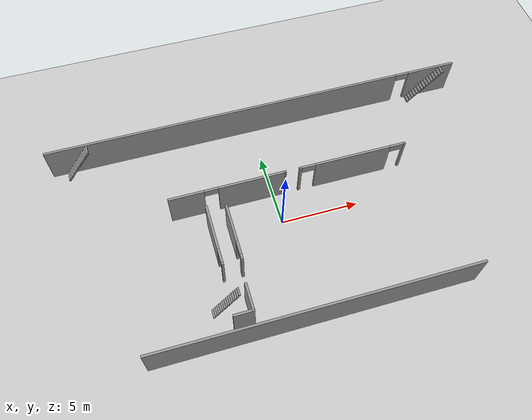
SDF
<sdf version="1.6">
 <world name="default">
  <model name="ground_plane">
   <static>1</static>
   <link name="link">
    <collision name="collision">
     <geometry><plane><normal>0 0 1</normal><size>100 100</size></plane></geometry>
     <surface><friction><ode><mu>100</mu><mu2>50</mu2></ode></friction></surface>
    </collision>
    <visual name="visual">
     <cast_shadows>0</cast_shadows>
     <geometry><plane><normal>0 0 1</normal><size>100 100</size></plane></geometry>
     <material>
      <script><uri>file://media/materials/scripts/gazebo.material</uri><name>Gazebo/Grey</name></script>
     </material>
    </visual>
   </link>
  </model>
  <model name="deh_f1">
   <pose>0.520969 0.357811 0 0 -0 0</pose>
   <link name="Stairs_0">
    <visual name="Stairs_0_Visual_0">
     <pose>-6.2314 -5.10974 0.083333 0 -0 1.5708</pose>
     <geometry><box><size>0.49 0.113139 0.166667</size></box></geometry>
     <material>
      <script><uri>file://media/materials/scripts/gazebo.material</uri><name>Gazebo/Grey</name></script>
      <ambient>1 1 1 1</ambient>
     </material>
    </visual>
    <collision name="Stairs_0_Collision_0">
     <geometry><box><size>0.49 0.113139 0.166667</size></box></geometry>
     <pose>-6.2314 -5.10974 0.083333 0 -0 1.5708</pose>
    </collision>
    <visual name="Stairs_0_Visual_1">
     <pose>-6.11826 -5.10974 0.25 0 -0 1.5708</pose>
     <geometry><box><size>0.49 0.113139 0.166667</size></box></geometry>
     <material>
      <script><uri>file://media/materials/scripts/gazebo.material</uri><name>Gazebo/Grey</name></script>
      <ambient>1 1 1 1</ambient>
     </material>
    </visual>
    <collision name="Stairs_0_Collision_1">
     <geometry><box><size>0.49 0.113139 0.166667</size></box></geometry>
     <pose>-6.11826 -5.10974 0.25 0 -0 1.5708</pose>
    </collision>
    <visual name="Stairs_0_Visual_2">
     <pose>-6.00512 -5.10974 0.416667 0 -0 1.5708</pose>
     <geometry><box><size>0.49 0.113139 0.166667</size></box></geometry>
     <material>
      <script><uri>file://media/materials/scripts/gazebo.material</uri><name>Gazebo/Grey</name></script>
      <ambient>1 1 1 1</ambient>
     </material>
    </visual>
    <collision name="Stairs_0_Collision_2">
     <geometry><box><size>0.49 0.113139 0.166667</size></box></geometry>
     <pose>-6.00512 -5.10974 0.416667 0 -0 1.5708</pose>
    </collision>
    <visual name="Stairs_0_Visual_3">
     <pose>-5.89198 -5.10974 0.583333 0 -0 1.5708</pose>
     <geometry><box><size>0.49 0.113139 0.166667</size></box></geometry>
     <material>
      <script><uri>file://media/materials/scripts/gazebo.material</uri><name>Gazebo/Grey</name></script>
      <ambient>1 1 1 1</ambient>
     </material>
    </visual>
    <collision name="Stairs_0_Collision_3">
     <geometry><box><size>0.49 0.113139 0.166667</size></box></geometry>
     <pose>-5.89198 -5.10974 0.583333 0 -0 1.5708</pose>
    </collision>
    <visual name="Stairs_0_Visual_4">
     <pose>-5.77884 -5.10974 0.75 0 -0 1.5708</pose>
     <geometry><box><size>0.49 0.113139 0.166667</size></box></geometry>
     <material>
      <script><uri>file://media/materials/scripts/gazebo.material</uri><name>Gazebo/Grey</name></script>
      <ambient>1 1 1 1</ambient>
     </material>
    </visual>
    <collision name="Stairs_0_Collision_4">
     <geometry><box><size>0.49 0.113139 0.166667</size></box></geometry>
     <pose>-5.77884 -5.10974 0.75 0 -0 1.5708</pose>
    </collision>
    <visual name="Stairs_0_Visual_5">
     <pose>-5.66571 -5.10974 0.916667 0 -0 1.5708</pose>
     <geometry><box><size>0.49 0.113139 0.166667</size></box></geometry>
     <material>
      <script><uri>file://media/materials/scripts/gazebo.material</uri><name>Gazebo/Grey</name></script>
      <ambient>1 1 1 1</ambient>
     </material>
    </visual>
    <collision name="Stairs_0_Collision_5">
     <geometry><box><size>0.49 0.113139 0.166667</size></box></geometry>
     <pose>-5.66571 -5.10974 0.916667 0 -0 1.5708</pose>
    </collision>
    <visual name="Stairs_0_Visual_6">
     <pose>-5.55257 -5.10974 1.08333 0 -0 1.5708</pose>
     <geometry><box><size>0.49 0.113139 0.166667</size></box></geometry>
     <material>
      <script><uri>file://media/materials/scripts/gazebo.material</uri><name>Gazebo/Grey</name></script>
      <ambient>1 1 1 1</ambient>
     </material>
    </visual>
    <collision name="Stairs_0_Collision_6">
     <geometry><box><size>0.49 0.113139 0.166667</size></box></geometry>
     <pose>-5.55257 -5.10974 1.08333 0 -0 1.5708</pose>
    </collision>
    <visual name="Stairs_0_Visual_7">
     <pose>-5.43943 -5.10974 1.25 0 -0 1.5708</pose>
     <geometry><box><size>0.49 0.113139 0.166667</size></box></geometry>
     <material>
      <script><uri>file://media/materials/scripts/gazebo.material</uri><name>Gazebo/Grey</name></script>
      <ambient>1 1 1 1</ambient>
     </material>
    </visual>
    <collision name="Stairs_0_Collision_7">
     <geometry><box><size>0.49 0.113139 0.166667</size></box></geometry>
     <pose>-5.43943 -5.10974 1.25 0 -0 1.5708</pose>
    </collision>
    <visual name="Stairs_0_Visual_8">
     <pose>-5.32629 -5.10974 1.41667 0 -0 1.5708</pose>
     <geometry><box><size>0.49 0.113139 0.166667</size></box></geometry>
     <material>
      <script><uri>file://media/materials/scripts/gazebo.material</uri><name>Gazebo/Grey</name></script>
      <ambient>1 1 1 1</ambient>
     </material>
    </visual>
    <collision name="Stairs_0_Collision_8">
     <geometry><box><size>0.49 0.113139 0.166667</size></box></geometry>
     <pose>-5.32629 -5.10974 1.41667 0 -0 1.5708</pose>
    </collision>
    <visual name="Stairs_0_Visual_9">
     <pose>-5.21315 -5.10974 1.58333 0 -0 1.5708</pose>
     <geometry><box><size>0.49 0.113139 0.166667</size></box></geometry>
     <material>
      <script><uri>file://media/materials/scripts/gazebo.material</uri><name>Gazebo/Grey</name></script>
      <ambient>1 1 1 1</ambient>
     </material>
    </visual>
    <collision name="Stairs_0_Collision_9">
     <geometry><box><size>0.49 0.113139 0.166667</size></box></geometry>
     <pose>-5.21315 -5.10974 1.58333 0 -0 1.5708</pose>
    </collision>
    <visual name="Stairs_0_Visual_10">
     <pose>-5.10001 -5.10974 1.75 0 -0 1.5708</pose>
     <geometry><box><size>0.49 0.113139 0.166667</size></box></geometry>
     <material>
      <script><uri>file://media/materials/scripts/gazebo.material</uri><name>Gazebo/Grey</name></script>
      <ambient>1 1 1 1</ambient>
     </material>
    </visual>
    <collision name="Stairs_0_Collision_10">
     <geometry><box><size>0.49 0.113139 0.166667</size></box></geometry>
     <pose>-5.10001 -5.10974 1.75 0 -0 1.5708</pose>
    </collision>
    <visual name="Stairs_0_Visual_11">
     <pose>-4.98687 -5.10974 1.91667 0 -0 1.5708</pose>
     <geometry><box><size>0.49 0.113139 0.166667</size></box></geometry>
     <material>
      <script><uri>file://media/materials/scripts/gazebo.material</uri><name>Gazebo/Grey</name></script>
      <ambient>1 1 1 1</ambient>
     </material>
    </visual>
    <collision name="Stairs_0_Collision_11">
     <geometry><box><size>0.49 0.113139 0.166667</size></box></geometry>
     <pose>-4.98687 -5.10974 1.91667 0 -0 1.5708</pose>
    </collision>
    <visual name="Stairs_0_Visual_12">
     <pose>-4.87373 -5.10974 2.08333 0 -0 1.5708</pose>
     <geometry><box><size>0.49 0.113139 0.166667</size></box></geometry>
     <material>
      <script><uri>file://media/materials/scripts/gazebo.material</uri><name>Gazebo/Grey</name></script>
      <ambient>1 1 1 1</ambient>
     </material>
    </visual>
    <collision name="Stairs_0_Collision_12">
     <geometry><box><size>0.49 0.113139 0.166667</size></box></geometry>
     <pose>-4.87373 -5.10974 2.08333 0 -0 1.5708</pose>
    </collision>
    <visual name="Stairs_0_Visual_13">
     <pose>-4.76059 -5.10974 2.25 0 -0 1.5708</pose>
     <geometry><box><size>0.49 0.113139 0.166667</size></box></geometry>
     <material>
      <script><uri>file://media/materials/scripts/gazebo.material</uri><name>Gazebo/Grey</name></script>
      <ambient>1 1 1 1</ambient>
     </material>
    </visual>
    <collision name="Stairs_0_Collision_13">
     <geometry><box><size>0.49 0.113139 0.166667</size></box></geometry>
     <pose>-4.76059 -5.10974 2.25 0 -0 1.5708</pose>
    </collision>
    <visual name="Stairs_0_Visual_14">
     <pose>-4.64745 -5.10974 2.41667 0 -0 1.5708</pose>
     <geometry><box><size>0.49 0.113139 0.166667</size></box></geometry>
     <material>
      <script><uri>file://media/materials/scripts/gazebo.material</uri><name>Gazebo/Grey</name></script>
      <ambient>1 1 1 1</ambient>
     </material>
    </visual>
    <collision name="Stairs_0_Collision_14">
     <geometry><box><size>0.49 0.113139 0.166667</size></box></geometry>
     <pose>-4.64745 -5.10974 2.41667 0 -0 1.5708</pose>
    </collision>
   </link>
   <link name="Stairs_1">
    <visual name="Stairs_1_Visual_0">
     <pose>-13.1163 6.81612 0.083333 0 -0 1.5708</pose>
     <geometry><box><size>0.63499 0.119775 0.166667</size></box></geometry>
     <material>
      <script><uri>file://media/materials/scripts/gazebo.material</uri><name>Gazebo/Grey</name></script>
      <ambient>1 1 1 1</ambient>
     </material>
    </visual>
    <collision name="Stairs_1_Collision_0">
     <geometry><box><size>0.63499 0.119775 0.166667</size></box></geometry>
     <pose>-13.1163 6.81612 0.083333 0 -0 1.5708</pose>
    </collision>
    <visual name="Stairs_1_Visual_1">
     <pose>-12.9965 6.81612 0.25 0 -0 1.5708</pose>
     <geometry><box><size>0.63499 0.119775 0.166667</size></box></geometry>
     <material>
      <script><uri>file://media/materials/scripts/gazebo.material</uri><name>Gazebo/Grey</name></script>
      <ambient>1 1 1 1</ambient>
     </material>
    </visual>
    <collision name="Stairs_1_Collision_1">
     <geometry><box><size>0.63499 0.119775 0.166667</size></box></geometry>
     <pose>-12.9965 6.81612 0.25 0 -0 1.5708</pose>
    </collision>
    <visual name="Stairs_1_Visual_2">
     <pose>-12.8767 6.81612 0.416667 0 -0 1.5708</pose>
     <geometry><box><size>0.63499 0.119775 0.166667</size></box></geometry>
     <material>
      <script><uri>file://media/materials/scripts/gazebo.material</uri><name>Gazebo/Grey</name></script>
      <ambient>1 1 1 1</ambient>
     </material>
    </visual>
    <collision name="Stairs_1_Collision_2">
     <geometry><box><size>0.63499 0.119775 0.166667</size></box></geometry>
     <pose>-12.8767 6.81612 0.416667 0 -0 1.5708</pose>
    </collision>
    <visual name="Stairs_1_Visual_3">
     <pose>-12.757 6.81612 0.583333 0 -0 1.5708</pose>
     <geometry><box><size>0.63499 0.119775 0.166667</size></box></geometry>
     <material>
      <script><uri>file://media/materials/scripts/gazebo.material</uri><name>Gazebo/Grey</name></script>
      <ambient>1 1 1 1</ambient>
     </material>
    </visual>
    <collision name="Stairs_1_Collision_3">
     <geometry><box><size>0.63499 0.119775 0.166667</size></box></geometry>
     <pose>-12.757 6.81612 0.583333 0 -0 1.5708</pose>
    </collision>
    <visual name="Stairs_1_Visual_4">
     <pose>-12.6372 6.81612 0.75 0 -0 1.5708</pose>
     <geometry><box><size>0.63499 0.119775 0.166667</size></box></geometry>
     <material>
      <script><uri>file://media/materials/scripts/gazebo.material</uri><name>Gazebo/Grey</name></script>
      <ambient>1 1 1 1</ambient>
     </material>
    </visual>
    <collision name="Stairs_1_Collision_4">
     <geometry><box><size>0.63499 0.119775 0.166667</size></box></geometry>
     <pose>-12.6372 6.81612 0.75 0 -0 1.5708</pose>
    </collision>
    <visual name="Stairs_1_Visual_5">
     <pose>-12.5174 6.81612 0.916667 0 -0 1.5708</pose>
     <geometry><box><size>0.63499 0.119775 0.166667</size></box></geometry>
     <material>
      <script><uri>file://media/materials/scripts/gazebo.material</uri><name>Gazebo/Grey</name></script>
      <ambient>1 1 1 1</ambient>
     </material>
    </visual>
    <collision name="Stairs_1_Collision_5">
     <geometry><box><size>0.63499 0.119775 0.166667</size></box></geometry>
     <pose>-12.5174 6.81612 0.916667 0 -0 1.5708</pose>
    </collision>
    <visual name="Stairs_1_Visual_6">
     <pose>-12.3976 6.81612 1.08333 0 -0 1.5708</pose>
     <geometry><box><size>0.63499 0.119775 0.166667</size></box></geometry>
     <material>
      <script><uri>file://media/materials/scripts/gazebo.material</uri><name>Gazebo/Grey</name></script>
      <ambient>1 1 1 1</ambient>
     </material>
    </visual>
    <collision name="Stairs_1_Collision_6">
     <geometry><box><size>0.63499 0.119775 0.166667</size></box></geometry>
     <pose>-12.3976 6.81612 1.08333 0 -0 1.5708</pose>
    </collision>
    <visual name="Stairs_1_Visual_7">
     <pose>-12.2779 6.81612 1.25 0 -0 1.5708</pose>
     <geometry><box><size>0.63499 0.119775 0.166667</size></box></geometry>
     <material>
      <script><uri>file://media/materials/scripts/gazebo.material</uri><name>Gazebo/Grey</name></script>
      <ambient>1 1 1 1</ambient>
     </material>
    </visual>
    <collision name="Stairs_1_Collision_7">
     <geometry><box><size>0.63499 0.119775 0.166667</size></box></geometry>
     <pose>-12.2779 6.81612 1.25 0 -0 1.5708</pose>
    </collision>
    <visual name="Stairs_1_Visual_8">
     <pose>-12.1581 6.81612 1.41667 0 -0 1.5708</pose>
     <geometry><box><size>0.63499 0.119775 0.166667</size></box></geometry>
     <material>
      <script><uri>file://media/materials/scripts/gazebo.material</uri><name>Gazebo/Grey</name></script>
      <ambient>1 1 1 1</ambient>
     </material>
    </visual>
    <collision name="Stairs_1_Collision_8">
     <geometry><box><size>0.63499 0.119775 0.166667</size></box></geometry>
     <pose>-12.1581 6.81612 1.41667 0 -0 1.5708</pose>
    </collision>
    <visual name="Stairs_1_Visual_9">
     <pose>-12.0383 6.81612 1.58333 0 -0 1.5708</pose>
     <geometry><box><size>0.63499 0.119775 0.166667</size></box></geometry>
     <material>
      <script><uri>file://media/materials/scripts/gazebo.material</uri><name>Gazebo/Grey</name></script>
      <ambient>1 1 1 1</ambient>
     </material>
    </visual>
    <collision name="Stairs_1_Collision_9">
     <geometry><box><size>0.63499 0.119775 0.166667</size></box></geometry>
     <pose>-12.0383 6.81612 1.58333 0 -0 1.5708</pose>
    </collision>
    <visual name="Stairs_1_Visual_10">
     <pose>-11.9185 6.81612 1.75 0 -0 1.5708</pose>
     <geometry><box><size>0.63499 0.119775 0.166667</size></box></geometry>
     <material>
      <script><uri>file://media/materials/scripts/gazebo.material</uri><name>Gazebo/Grey</name></script>
      <ambient>1 1 1 1</ambient>
     </material>
    </visual>
    <collision name="Stairs_1_Collision_10">
     <geometry><box><size>0.63499 0.119775 0.166667</size></box></geometry>
     <pose>-11.9185 6.81612 1.75 0 -0 1.5708</pose>
    </collision>
    <visual name="Stairs_1_Visual_11">
     <pose>-11.7988 6.81612 1.91667 0 -0 1.5708</pose>
     <geometry><box><size>0.63499 0.119775 0.166667</size></box></geometry>
     <material>
      <script><uri>file://media/materials/scripts/gazebo.material</uri><name>Gazebo/Grey</name></script>
      <ambient>1 1 1 1</ambient>
     </material>
    </visual>
    <collision name="Stairs_1_Collision_11">
     <geometry><box><size>0.63499 0.119775 0.166667</size></box></geometry>
     <pose>-11.7988 6.81612 1.91667 0 -0 1.5708</pose>
    </collision>
    <visual name="Stairs_1_Visual_12">
     <pose>-11.679 6.81612 2.08333 0 -0 1.5708</pose>
     <geometry><box><size>0.63499 0.119775 0.166667</size></box></geometry>
     <material>
      <script><uri>file://media/materials/scripts/gazebo.material</uri><name>Gazebo/Grey</name></script>
      <ambient>1 1 1 1</ambient>
     </material>
    </visual>
    <collision name="Stairs_1_Collision_12">
     <geometry><box><size>0.63499 0.119775 0.166667</size></box></geometry>
     <pose>-11.679 6.81612 2.08333 0 -0 1.5708</pose>
    </collision>
    <visual name="Stairs_1_Visual_13">
     <pose>-11.5592 6.81612 2.25 0 -0 1.5708</pose>
     <geometry><box><size>0.63499 0.119775 0.166667</size></box></geometry>
     <material>
      <script><uri>file://media/materials/scripts/gazebo.material</uri><name>Gazebo/Grey</name></script>
      <ambient>1 1 1 1</ambient>
     </material>
    </visual>
    <collision name="Stairs_1_Collision_13">
     <geometry><box><size>0.63499 0.119775 0.166667</size></box></geometry>
     <pose>-11.5592 6.81612 2.25 0 -0 1.5708</pose>
    </collision>
    <visual name="Stairs_1_Visual_14">
     <pose>-11.4394 6.81612 2.41667 0 -0 1.5708</pose>
     <geometry><box><size>0.63499 0.119775 0.166667</size></box></geometry>
     <material>
      <script><uri>file://media/materials/scripts/gazebo.material</uri><name>Gazebo/Grey</name></script>
      <ambient>1 1 1 1</ambient>
     </material>
    </visual>
    <collision name="Stairs_1_Collision_14">
     <geometry><box><size>0.63499 0.119775 0.166667</size></box></geometry>
     <pose>-11.4394 6.81612 2.41667 0 -0 1.5708</pose>
    </collision>
   </link>
   <link name="Stairs_2">
    <visual name="Stairs_2_Visual_0">
     <pose>11.0741 6.86907 0.083333 0 -0 1.5708</pose>
     <geometry><box><size>0.520025 0.144952 0.166667</size></box></geometry>
     <material>
      <script><uri>file://media/materials/scripts/gazebo.material</uri><name>Gazebo/Grey</name></script>
      <ambient>1 1 1 1</ambient>
     </material>
    </visual>
    <collision name="Stairs_2_Collision_0">
     <geometry><box><size>0.520025 0.144952 0.166667</size></box></geometry>
     <pose>11.0741 6.86907 0.083333 0 -0 1.5708</pose>
    </collision>
    <visual name="Stairs_2_Visual_1">
     <pose>11.219 6.86907 0.25 0 -0 1.5708</pose>
     <geometry><box><size>0.520025 0.144952 0.166667</size></box></geometry>
     <material>
      <script><uri>file://media/materials/scripts/gazebo.material</uri><name>Gazebo/Grey</name></script>
      <ambient>1 1 1 1</ambient>
     </material>
    </visual>
    <collision name="Stairs_2_Collision_1">
     <geometry><box><size>0.520025 0.144952 0.166667</size></box></geometry>
     <pose>11.219 6.86907 0.25 0 -0 1.5708</pose>
    </collision>
    <visual name="Stairs_2_Visual_2">
     <pose>11.364 6.86907 0.416667 0 -0 1.5708</pose>
     <geometry><box><size>0.520025 0.144952 0.166667</size></box></geometry>
     <material>
      <script><uri>file://media/materials/scripts/gazebo.material</uri><name>Gazebo/Grey</name></script>
      <ambient>1 1 1 1</ambient>
     </material>
    </visual>
    <collision name="Stairs_2_Collision_2">
     <geometry><box><size>0.520025 0.144952 0.166667</size></box></geometry>
     <pose>11.364 6.86907 0.416667 0 -0 1.5708</pose>
    </collision>
    <visual name="Stairs_2_Visual_3">
     <pose>11.5089 6.86907 0.583333 0 -0 1.5708</pose>
     <geometry><box><size>0.520025 0.144952 0.166667</size></box></geometry>
     <material>
      <script><uri>file://media/materials/scripts/gazebo.material</uri><name>Gazebo/Grey</name></script>
      <ambient>1 1 1 1</ambient>
     </material>
    </visual>
    <collision name="Stairs_2_Collision_3">
     <geometry><box><size>0.520025 0.144952 0.166667</size></box></geometry>
     <pose>11.5089 6.86907 0.583333 0 -0 1.5708</pose>
    </collision>
    <visual name="Stairs_2_Visual_4">
     <pose>11.6539 6.86907 0.75 0 -0 1.5708</pose>
     <geometry><box><size>0.520025 0.144952 0.166667</size></box></geometry>
     <material>
      <script><uri>file://media/materials/scripts/gazebo.material</uri><name>Gazebo/Grey</name></script>
      <ambient>1 1 1 1</ambient>
     </material>
    </visual>
    <collision name="Stairs_2_Collision_4">
     <geometry><box><size>0.520025 0.144952 0.166667</size></box></geometry>
     <pose>11.6539 6.86907 0.75 0 -0 1.5708</pose>
    </collision>
    <visual name="Stairs_2_Visual_5">
     <pose>11.7988 6.86907 0.916667 0 -0 1.5708</pose>
     <geometry><box><size>0.520025 0.144952 0.166667</size></box></geometry>
     <material>
      <script><uri>file://media/materials/scripts/gazebo.material</uri><name>Gazebo/Grey</name></script>
      <ambient>1 1 1 1</ambient>
     </material>
    </visual>
    <collision name="Stairs_2_Collision_5">
     <geometry><box><size>0.520025 0.144952 0.166667</size></box></geometry>
     <pose>11.7988 6.86907 0.916667 0 -0 1.5708</pose>
    </collision>
    <visual name="Stairs_2_Visual_6">
     <pose>11.9438 6.86907 1.08333 0 -0 1.5708</pose>
     <geometry><box><size>0.520025 0.144952 0.166667</size></box></geometry>
     <material>
      <script><uri>file://media/materials/scripts/gazebo.material</uri><name>Gazebo/Grey</name></script>
      <ambient>1 1 1 1</ambient>
     </material>
    </visual>
    <collision name="Stairs_2_Collision_6">
     <geometry><box><size>0.520025 0.144952 0.166667</size></box></geometry>
     <pose>11.9438 6.86907 1.08333 0 -0 1.5708</pose>
    </collision>
    <visual name="Stairs_2_Visual_7">
     <pose>12.0887 6.86907 1.25 0 -0 1.5708</pose>
     <geometry><box><size>0.520025 0.144952 0.166667</size></box></geometry>
     <material>
      <script><uri>file://media/materials/scripts/gazebo.material</uri><name>Gazebo/Grey</name></script>
      <ambient>1 1 1 1</ambient>
     </material>
    </visual>
    <collision name="Stairs_2_Collision_7">
     <geometry><box><size>0.520025 0.144952 0.166667</size></box></geometry>
     <pose>12.0887 6.86907 1.25 0 -0 1.5708</pose>
    </collision>
    <visual name="Stairs_2_Visual_8">
     <pose>12.2337 6.86907 1.41667 0 -0 1.5708</pose>
     <geometry><box><size>0.520025 0.144952 0.166667</size></box></geometry>
     <material>
      <script><uri>file://media/materials/scripts/gazebo.material</uri><name>Gazebo/Grey</name></script>
      <ambient>1 1 1 1</ambient>
     </material>
    </visual>
    <collision name="Stairs_2_Collision_8">
     <geometry><box><size>0.520025 0.144952 0.166667</size></box></geometry>
     <pose>12.2337 6.86907 1.41667 0 -0 1.5708</pose>
    </collision>
    <visual name="Stairs_2_Visual_9">
     <pose>12.3786 6.86907 1.58333 0 -0 1.5708</pose>
     <geometry><box><size>0.520025 0.144952 0.166667</size></box></geometry>
     <material>
      <script><uri>file://media/materials/scripts/gazebo.material</uri><name>Gazebo/Grey</name></script>
      <ambient>1 1 1 1</ambient>
     </material>
    </visual>
    <collision name="Stairs_2_Collision_9">
     <geometry><box><size>0.520025 0.144952 0.166667</size></box></geometry>
     <pose>12.3786 6.86907 1.58333 0 -0 1.5708</pose>
    </collision>
    <visual name="Stairs_2_Visual_10">
     <pose>12.5236 6.86907 1.75 0 -0 1.5708</pose>
     <geometry><box><size>0.520025 0.144952 0.166667</size></box></geometry>
     <material>
      <script><uri>file://media/materials/scripts/gazebo.material</uri><name>Gazebo/Grey</name></script>
      <ambient>1 1 1 1</ambient>
     </material>
    </visual>
    <collision name="Stairs_2_Collision_10">
     <geometry><box><size>0.520025 0.144952 0.166667</size></box></geometry>
     <pose>12.5236 6.86907 1.75 0 -0 1.5708</pose>
    </collision>
    <visual name="Stairs_2_Visual_11">
     <pose>12.6685 6.86907 1.91667 0 -0 1.5708</pose>
     <geometry><box><size>0.520025 0.144952 0.166667</size></box></geometry>
     <material>
      <script><uri>file://media/materials/scripts/gazebo.material</uri><name>Gazebo/Grey</name></script>
      <ambient>1 1 1 1</ambient>
     </material>
    </visual>
    <collision name="Stairs_2_Collision_11">
     <geometry><box><size>0.520025 0.144952 0.166667</size></box></geometry>
     <pose>12.6685 6.86907 1.91667 0 -0 1.5708</pose>
    </collision>
    <visual name="Stairs_2_Visual_12">
     <pose>12.8135 6.86907 2.08333 0 -0 1.5708</pose>
     <geometry><box><size>0.520025 0.144952 0.166667</size></box></geometry>
     <material>
      <script><uri>file://media/materials/scripts/gazebo.material</uri><name>Gazebo/Grey</name></script>
      <ambient>1 1 1 1</ambient>
     </material>
    </visual>
    <collision name="Stairs_2_Collision_12">
     <geometry><box><size>0.520025 0.144952 0.166667</size></box></geometry>
     <pose>12.8135 6.86907 2.08333 0 -0 1.5708</pose>
    </collision>
    <visual name="Stairs_2_Visual_13">
     <pose>12.9584 6.86907 2.25 0 -0 1.5708</pose>
     <geometry><box><size>0.520025 0.144952 0.166667</size></box></geometry>
     <material>
      <script><uri>file://media/materials/scripts/gazebo.material</uri><name>Gazebo/Grey</name></script>
      <ambient>1 1 1 1</ambient>
     </material>
    </visual>
    <collision name="Stairs_2_Collision_13">
     <geometry><box><size>0.520025 0.144952 0.166667</size></box></geometry>
     <pose>12.9584 6.86907 2.25 0 -0 1.5708</pose>
    </collision>
    <visual name="Stairs_2_Visual_14">
     <pose>13.1034 6.86907 2.41667 0 -0 1.5708</pose>
     <geometry><box><size>0.520025 0.144952 0.166667</size></box></geometry>
     <material>
      <script><uri>file://media/materials/scripts/gazebo.material</uri><name>Gazebo/Grey</name></script>
      <ambient>1 1 1 1</ambient>
     </material>
    </visual>
    <collision name="Stairs_2_Collision_14">
     <geometry><box><size>0.520025 0.144952 0.166667</size></box></geometry>
     <pose>13.1034 6.86907 2.41667 0 -0 1.5708</pose>
    </collision>
   </link>
   <link name="Wall_0">
    <collision name="Wall_0_Collision">
     <geometry><box><size>20 0.15 2.5</size></box></geometry>
     <pose>0 0 1.25 0 -0 0</pose>
    </collision>
    <visual name="Wall_0_Visual">
     <pose>0 0 1.25 0 -0 0</pose>
     <geometry><box><size>20 0.15 2.5</size></box></geometry>
     <material>
      <script><uri>file://media/materials/scripts/gazebo.material</uri><name>Gazebo/Grey</name></script>
      <ambient>1 1 1 1</ambient>
     </material>
    </visual>
    <pose>-0.526964 -7.22647 0 0 -0 0</pose>
   </link>
   <link name="Wall_130">
    <pose>-3.91846 -1.4072 0 0 0 -1.5708</pose>
    <visual name="Wall_130_Visual_0">
     <pose>-0.617959 0 1.25 0 -0 0</pose>
     <geometry><box><size>2.51408 0.15 2.5</size></box></geometry>
     <material>
      <script><uri>file://media/materials/scripts/gazebo.material</uri><name>Gazebo/Grey</name></script>
      <ambient>1 1 1 1</ambient>
     </material>
    </visual>
    <collision name="Wall_130_Collision_0">
     <geometry><box><size>2.51408 0.15 2.5</size></box></geometry>
     <pose>-0.617959 0 1.25 0 -0 0</pose>
    </collision>
    <visual name="Wall_130_Visual_1">
     <pose>1.70704 0 1.25 0 -0 0</pose>
     <geometry><box><size>0.335919 0.15 2.5</size></box></geometry>
     <material>
      <script><uri>file://media/materials/scripts/gazebo.material</uri><name>Gazebo/Grey</name></script>
      <ambient>1 1 1 1</ambient>
     </material>
    </visual>
    <collision name="Wall_130_Collision_1">
     <geometry><box><size>0.335919 0.15 2.5</size></box></geometry>
     <pose>1.70704 0 1.25 0 -0 0</pose>
    </collision>
    <visual name="Wall_130_Visual_2">
     <pose>1.08908 0 2.25 0 -0 0</pose>
     <geometry><box><size>0.9 0.15 0.5</size></box></geometry>
     <material>
      <script><uri>file://media/materials/scripts/gazebo.material</uri><name>Gazebo/Grey</name></script>
      <ambient>1 1 1 1</ambient>
     </material>
    </visual>
    <collision name="Wall_130_Collision_2">
     <geometry><box><size>0.9 0.15 0.5</size></box></geometry>
     <pose>1.08908 0 2.25 0 -0 0</pose>
    </collision>
   </link>
   <link name="Wall_29">
    <collision name="Wall_29_Collision">
     <geometry><box><size>1.75 0.15 2.5</size></box></geometry>
     <pose>0 0 1.25 0 -0 0</pose>
    </collision>
    <visual name="Wall_29_Visual">
     <pose>0 0 1.25 0 -0 0</pose>
     <geometry><box><size>1.75 0.15 2.5</size></box></geometry>
     <material>
      <script><uri>file://media/materials/scripts/gazebo.material</uri><name>Gazebo/Grey</name></script>
      <ambient>1 1 1 1</ambient>
     </material>
    </visual>
    <pose>-4.13797 -5.58474 0 0 0 -1.5708</pose>
   </link>
   <link name="Wall_30">
    <collision name="Wall_30_Collision">
     <geometry><box><size>1.25 0.15 2.5</size></box></geometry>
     <pose>0 0 1.25 0 -0 0</pose>
    </collision>
    <visual name="Wall_30_Visual">
     <pose>0 0 1.25 0 -0 0</pose>
     <geometry><box><size>1.25 0.15 2.5</size></box></geometry>
     <material>
      <script><uri>file://media/materials/scripts/gazebo.material</uri><name>Gazebo/Grey</name></script>
      <ambient>1 1 1 1</ambient>
     </material>
    </visual>
    <pose>-4.68797 -6.38474 0 0 -0 3.14159</pose>
   </link>
   <link name="Wall_39">
    <pose>-5.09229 -1.29796 0 0 -0 1.5708</pose>
    <visual name="Wall_39_Visual_0">
     <pose>-1.92561 0 1.25 0 -0 0</pose>
     <geometry><box><size>0.162001 0.15 2.5</size></box></geometry>
     <material>
      <script><uri>file://media/materials/scripts/gazebo.material</uri><name>Gazebo/Grey</name></script>
      <ambient>1 1 1 1</ambient>
     </material>
    </visual>
    <collision name="Wall_39_Collision_0">
     <geometry><box><size>0.162001 0.15 2.5</size></box></geometry>
     <pose>-1.92561 0 1.25 0 -0 0</pose>
    </collision>
    <visual name="Wall_39_Visual_1">
     <pose>0.531001 0 1.25 0 -0 0</pose>
     <geometry><box><size>2.95122 0.15 2.5</size></box></geometry>
     <material>
      <script><uri>file://media/materials/scripts/gazebo.material</uri><name>Gazebo/Grey</name></script>
      <ambient>1 1 1 1</ambient>
     </material>
    </visual>
    <collision name="Wall_39_Collision_1">
     <geometry><box><size>2.95122 0.15 2.5</size></box></geometry>
     <pose>0.531001 0 1.25 0 -0 0</pose>
    </collision>
    <visual name="Wall_39_Visual_2">
     <pose>-1.39461 0 2.25 0 -0 0</pose>
     <geometry><box><size>0.9 0.15 0.5</size></box></geometry>
     <material>
      <script><uri>file://media/materials/scripts/gazebo.material</uri><name>Gazebo/Grey</name></script>
      <ambient>1 1 1 1</ambient>
     </material>
    </visual>
    <collision name="Wall_39_Collision_2">
     <geometry><box><size>0.9 0.15 0.5</size></box></geometry>
     <pose>-1.39461 0 2.25 0 -0 0</pose>
    </collision>
   </link>
   <link name="Wall_5">
    <pose>-0.001964 7.22353 0 0 -0 0</pose>
    <visual name="Wall_5_Visual_0">
     <pose>-2.10672 0 1.25 0 -0 0</pose>
     <geometry><box><size>24.0366 0.15 2.5</size></box></geometry>
     <material>
      <script><uri>file://media/materials/scripts/gazebo.material</uri><name>Gazebo/Grey</name></script>
      <ambient>1 1 1 1</ambient>
     </material>
    </visual>
    <collision name="Wall_5_Collision_0">
     <geometry><box><size>24.0366 0.15 2.5</size></box></geometry>
     <pose>-2.10672 0 1.25 0 -0 0</pose>
    </collision>
    <visual name="Wall_5_Visual_1">
     <pose>12.4683 0 1.25 0 -0 0</pose>
     <geometry><box><size>3.31344 0.15 2.5</size></box></geometry>
     <material>
      <script><uri>file://media/materials/scripts/gazebo.material</uri><name>Gazebo/Grey</name></script>
      <ambient>1 1 1 1</ambient>
     </material>
    </visual>
    <collision name="Wall_5_Collision_1">
     <geometry><box><size>3.31344 0.15 2.5</size></box></geometry>
     <pose>12.4683 0 1.25 0 -0 0</pose>
    </collision>
    <visual name="Wall_5_Visual_2">
     <pose>10.3616 0 2.25 0 -0 0</pose>
     <geometry><box><size>0.9 0.15 0.5</size></box></geometry>
     <material>
      <script><uri>file://media/materials/scripts/gazebo.material</uri><name>Gazebo/Grey</name></script>
      <ambient>1 1 1 1</ambient>
     </material>
    </visual>
    <collision name="Wall_5_Collision_2">
     <geometry><box><size>0.9 0.15 0.5</size></box></geometry>
     <pose>10.3616 0 2.25 0 -0 0</pose>
    </collision>
   </link>
   <link name="Wall_94">
    <pose>0.504862 1.75239 0 0 -0 0</pose>
    <visual name="Wall_94_Visual_0">
     <pose>-6.61751 0 1.25 0 -0 0</pose>
     <geometry><box><size>2.26499 0.15 2.5</size></box></geometry>
     <material>
      <script><uri>file://media/materials/scripts/gazebo.material</uri><name>Gazebo/Grey</name></script>
      <ambient>1 1 1 1</ambient>
     </material>
    </visual>
    <collision name="Wall_94_Collision_0">
     <geometry><box><size>2.26499 0.15 2.5</size></box></geometry>
     <pose>-6.61751 0 1.25 0 -0 0</pose>
    </collision>
    <visual name="Wall_94_Visual_1">
     <pose>-2.42987 0 1.25 0 -0 0</pose>
     <geometry><box><size>4.31028 0.15 2.5</size></box></geometry>
     <material>
      <script><uri>file://media/materials/scripts/gazebo.material</uri><name>Gazebo/Grey</name></script>
      <ambient>1 1 1 1</ambient>
     </material>
    </visual>
    <collision name="Wall_94_Collision_1">
     <geometry><box><size>4.31028 0.15 2.5</size></box></geometry>
     <pose>-2.42987 0 1.25 0 -0 0</pose>
    </collision>
    <visual name="Wall_94_Visual_2">
     <pose>0.710266 0 1.25 0 -0 0</pose>
     <geometry><box><size>0.17 0.15 2.5</size></box></geometry>
     <material>
      <script><uri>file://media/materials/scripts/gazebo.material</uri><name>Gazebo/Grey</name></script>
      <ambient>1 1 1 1</ambient>
     </material>
    </visual>
    <collision name="Wall_94_Collision_2">
     <geometry><box><size>0.17 0.15 2.5</size></box></geometry>
     <pose>0.710266 0 1.25 0 -0 0</pose>
    </collision>
    <visual name="Wall_94_Visual_3">
     <pose>4.19674 0 1.25 0 -0 0</pose>
     <geometry><box><size>5.00295 0.15 2.5</size></box></geometry>
     <material>
      <script><uri>file://media/materials/scripts/gazebo.material</uri><name>Gazebo/Grey</name></script>
      <ambient>1 1 1 1</ambient>
     </material>
    </visual>
    <collision name="Wall_94_Collision_3">
     <geometry><box><size>5.00295 0.15 2.5</size></box></geometry>
     <pose>4.19674 0 1.25 0 -0 0</pose>
    </collision>
    <visual name="Wall_94_Visual_4">
     <pose>7.67411 0 1.25 0 -0 0</pose>
     <geometry><box><size>0.151786 0.15 2.5</size></box></geometry>
     <material>
      <script><uri>file://media/materials/scripts/gazebo.material</uri><name>Gazebo/Grey</name></script>
      <ambient>1 1 1 1</ambient>
     </material>
    </visual>
    <collision name="Wall_94_Collision_4">
     <geometry><box><size>0.151786 0.15 2.5</size></box></geometry>
     <pose>7.67411 0 1.25 0 -0 0</pose>
    </collision>
    <visual name="Wall_94_Visual_5">
     <pose>-5.03501 0 2.25 0 -0 0</pose>
     <geometry><box><size>0.9 0.15 0.5</size></box></geometry>
     <material>
      <script><uri>file://media/materials/scripts/gazebo.material</uri><name>Gazebo/Grey</name></script>
      <ambient>1 1 1 1</ambient>
     </material>
    </visual>
    <collision name="Wall_94_Collision_5">
     <geometry><box><size>0.9 0.15 0.5</size></box></geometry>
     <pose>-5.03501 0 2.25 0 -0 0</pose>
    </collision>
    <visual name="Wall_94_Visual_6">
     <pose>-0.274734 0 2.25 0 -0 0</pose>
     <geometry><box><size>0.1 0.15 0.5</size></box></geometry>
     <material>
      <script><uri>file://media/materials/scripts/gazebo.material</uri><name>Gazebo/Grey</name></script>
      <ambient>1 1 1 1</ambient>
     </material>
    </visual>
    <collision name="Wall_94_Collision_6">
     <geometry><box><size>0.1 0.15 0.5</size></box></geometry>
     <pose>-0.274734 0 2.25 0 -0 0</pose>
    </collision>
    <visual name="Wall_94_Visual_7">
     <pose>1.24527 0 2.25 0 -0 0</pose>
     <geometry><box><size>0.9 0.15 0.5</size></box></geometry>
     <material>
      <script><uri>file://media/materials/scripts/gazebo.material</uri><name>Gazebo/Grey</name></script>
      <ambient>1 1 1 1</ambient>
     </material>
    </visual>
    <collision name="Wall_94_Collision_7">
     <geometry><box><size>0.9 0.15 0.5</size></box></geometry>
     <pose>1.24527 0 2.25 0 -0 0</pose>
    </collision>
    <visual name="Wall_94_Visual_8">
     <pose>7.14821 0 2.25 0 -0 0</pose>
     <geometry><box><size>0.9 0.15 0.5</size></box></geometry>
     <material>
      <script><uri>file://media/materials/scripts/gazebo.material</uri><name>Gazebo/Grey</name></script>
      <ambient>1 1 1 1</ambient>
     </material>
    </visual>
    <collision name="Wall_94_Collision_8">
     <geometry><box><size>0.9 0.15 0.5</size></box></geometry>
     <pose>7.14821 0 2.25 0 -0 0</pose>
    </collision>
   </link>
   <static>1</static>
  </model>
 </world>
</sdf>
